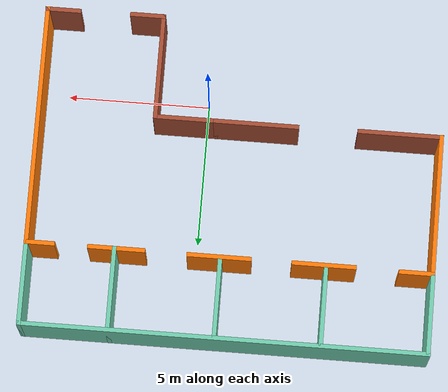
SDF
<?xml version='1.0'?>
<sdf version='1.7'>
  <model name='mybuilding'>
    <pose>-1.18 3.025 0 0 -0 0</pose>
    <link name='Wall_0'>
      <collision name='Wall_0_Collision'>
        <geometry>
          <box>
            <size>14.25 0.15 2.5</size>
          </box>
        </geometry>
        <pose>0 0 1.25 0 -0 0</pose>
      </collision>
      <visual name='Wall_0_Visual'>
        <pose>0 0 1.25 0 -0 0</pose>
        <geometry>
          <box>
            <size>14.25 0.15 2.5</size>
          </box>
        </geometry>
        <material>
          <script>
            <uri>file://media/materials/scripts/gazebo.material</uri>
            <name>Gazebo/Grey</name>
          </script>
          <ambient>0.435294 0.796078 0.67451 1</ambient>
        </material>
        <meta>
          <layer>0</layer>
        </meta>
      </visual>
      <pose>0 5.615 0 0 -0 0</pose>
    </link>
    <link name='Wall_10'>
      <collision name='Wall_10_Collision'>
        <geometry>
          <box>
            <size>2.75 0.15 2.5</size>
          </box>
        </geometry>
        <pose>0 0 1.25 0 -0 0</pose>
      </collision>
      <visual name='Wall_10_Visual'>
        <pose>0 0 1.25 0 -0 0</pose>
        <geometry>
          <box>
            <size>2.75 0.15 2.5</size>
          </box>
        </geometry>
        <material>
          <script>
            <uri>file://media/materials/scripts/gazebo.material</uri>
            <name>Gazebo/Grey</name>
          </script>
          <ambient>0.435294 0.796078 0.67451 1</ambient>
        </material>
        <meta>
          <layer>0</layer>
        </meta>
      </visual>
      <pose>-3.35 4.225 0 0 -0 -1.5708</pose>
    </link>
    <link name='Wall_12'>
      <collision name='Wall_12_Collision'>
        <geometry>
          <box>
            <size>2.75 0.15 2.5</size>
          </box>
        </geometry>
        <pose>0 0 1.25 0 -0 0</pose>
      </collision>
      <visual name='Wall_12_Visual'>
        <pose>0 0 1.25 0 -0 0</pose>
        <geometry>
          <box>
            <size>2.75 0.15 2.5</size>
          </box>
        </geometry>
        <material>
          <script>
            <uri>file://media/materials/scripts/gazebo.material</uri>
            <name>Gazebo/Grey</name>
          </script>
          <ambient>0.435294 0.796078 0.67451 1</ambient>
        </material>
        <meta>
          <layer>0</layer>
        </meta>
      </visual>
      <pose>-7.04 4.235 0 0 -0 -1.5708</pose>
    </link>
    <link name='Wall_14'>
      <collision name='Wall_14_Collision'>
        <geometry>
          <box>
            <size>3 0.15 2.5</size>
          </box>
        </geometry>
        <pose>0 0 1.25 0 -0 0</pose>
      </collision>
      <visual name='Wall_14_Visual'>
        <pose>0 0 1.25 0 -0 0</pose>
        <geometry>
          <box>
            <size>3 0.15 2.5</size>
          </box>
        </geometry>
        <material>
          <script>
            <uri>file://media/materials/scripts/gazebo.material</uri>
            <name>Gazebo/Grey</name>
          </script>
          <ambient>0.435294 0.796078 0.67451 1</ambient>
        </material>
        <meta>
          <layer>0</layer>
        </meta>
      </visual>
      <pose>7.05 4.19 0 0 -0 -1.5708</pose>
    </link>
    <link name='Wall_16'>
      <collision name='Wall_16_Collision'>
        <geometry>
          <box>
            <size>2.25 0.15 2.5</size>
          </box>
        </geometry>
        <pose>0 0 1.25 0 -0 0</pose>
      </collision>
      <visual name='Wall_16_Visual'>
        <pose>0 0 1.25 0 -0 0</pose>
        <geometry>
          <box>
            <size>2.25 0.15 2.5</size>
          </box>
        </geometry>
        <material>
          <script>
            <uri>file://media/materials/scripts/gazebo.material</uri>
            <name>Gazebo/Grey</name>
          </script>
          <ambient>0.996078 0.47451 0.0196078 1</ambient>
        </material>
        <meta>
          <layer>0</layer>
        </meta>
      </visual>
      <pose>0.36 2.785 0 0 -0 3.14159</pose>
    </link>
    <link name='Wall_18'>
      <collision name='Wall_18_Collision'>
        <geometry>
          <box>
            <size>2.25 0.15 2.5</size>
          </box>
        </geometry>
        <pose>0 0 1.25 0 -0 0</pose>
      </collision>
      <visual name='Wall_18_Visual'>
        <pose>0 0 1.25 0 -0 0</pose>
        <geometry>
          <box>
            <size>2.25 0.15 2.5</size>
          </box>
        </geometry>
        <material>
          <script>
            <uri>file://media/materials/scripts/gazebo.material</uri>
            <name>Gazebo/Grey</name>
          </script>
          <ambient>0.996078 0.47451 0.0196078 1</ambient>
        </material>
        <meta>
          <layer>0</layer>
        </meta>
      </visual>
      <pose>-3.27 2.795 0 0 -0 3.14159</pose>
    </link>
    <link name='Wall_2'>
      <collision name='Wall_2_Collision'>
        <geometry>
          <box>
            <size>1 0.15 2.5</size>
          </box>
        </geometry>
        <pose>0 0 1.25 0 -0 0</pose>
      </collision>
      <visual name='Wall_2_Visual'>
        <pose>0 0 1.25 0 -0 0</pose>
        <geometry>
          <box>
            <size>1 0.15 2.5</size>
          </box>
        </geometry>
        <material>
          <script>
            <uri>file://media/materials/scripts/gazebo.material</uri>
            <name>Gazebo/Grey</name>
          </script>
          <ambient>0.996078 0.47451 0.0196078 1</ambient>
        </material>
        <meta>
          <layer>0</layer>
        </meta>
      </visual>
      <pose>6.555 2.765 0 0 -0 3.14159</pose>
    </link>
    <link name='Wall_22'>
      <collision name='Wall_22_Collision'>
        <geometry>
          <box>
            <size>5 0.15 2.5</size>
          </box>
        </geometry>
        <pose>0 0 1.25 0 -0 0</pose>
      </collision>
      <visual name='Wall_22_Visual'>
        <pose>0 0 1.25 0 -0 0</pose>
        <geometry>
          <box>
            <size>5 0.15 2.5</size>
          </box>
        </geometry>
        <material>
          <script>
            <uri>file://media/materials/scripts/gazebo.material</uri>
            <name>Gazebo/Grey</name>
          </script>
          <ambient>0.996078 0.47451 0.0196078 1</ambient>
        </material>
        <meta>
          <layer>0</layer>
        </meta>
      </visual>
      <pose>-7.03 0.4 0 0 -0 -1.5708</pose>
    </link>
    <link name='Wall_25'>
      <collision name='Wall_25_Collision'>
        <geometry>
          <box>
            <size>1.25 0.15 2.5</size>
          </box>
        </geometry>
        <pose>0 0 1.25 0 -0 0</pose>
      </collision>
      <visual name='Wall_25_Visual'>
        <pose>0 0 1.25 0 -0 0</pose>
        <geometry>
          <box>
            <size>1.25 0.15 2.5</size>
          </box>
        </geometry>
        <material>
          <script>
            <uri>file://media/materials/scripts/gazebo.material</uri>
            <name>Gazebo/Grey</name>
          </script>
          <ambient>0.996078 0.47451 0.0196078 1</ambient>
        </material>
        <meta>
          <layer>0</layer>
        </meta>
      </visual>
      <pose>-6.48 2.825 0 0 -0 0</pose>
    </link>
    <link name='Wall_27'>
      <collision name='Wall_27_Collision'>
        <geometry>
          <box>
            <size>3 0.15 2.5</size>
          </box>
        </geometry>
        <pose>0 0 1.25 0 -0 0</pose>
      </collision>
      <visual name='Wall_27_Visual'>
        <pose>0 0 1.25 0 -0 0</pose>
        <geometry>
          <box>
            <size>3 0.15 2.5</size>
          </box>
        </geometry>
        <material>
          <script>
            <uri>file://media/materials/scripts/gazebo.material</uri>
            <name>Gazebo/Bricks</name>
          </script>
          <ambient>1 1 1 1</ambient>
        </material>
        <meta>
          <layer>0</layer>
        </meta>
      </visual>
      <pose>-5.605 -2.025 0 0 -0 0</pose>
    </link>
    <link name='Wall_29'>
      <collision name='Wall_29_Collision'>
        <geometry>
          <box>
            <size>3 0.15 2.5</size>
          </box>
        </geometry>
        <pose>0 0 1.25 0 -0 0</pose>
      </collision>
      <visual name='Wall_29_Visual'>
        <pose>0 0 1.25 0 -0 0</pose>
        <geometry>
          <box>
            <size>3 0.15 2.5</size>
          </box>
        </geometry>
        <material>
          <script>
            <uri>file://media/materials/scripts/gazebo.material</uri>
            <name>Gazebo/Bricks</name>
          </script>
          <ambient>1 1 1 1</ambient>
        </material>
        <meta>
          <layer>0</layer>
        </meta>
      </visual>
      <pose>-0.565 -2.005 0 0 -0 0</pose>
    </link>
    <link name='Wall_31'>
      <collision name='Wall_31_Collision'>
        <geometry>
          <box>
            <size>8.5 0.15 2.5</size>
          </box>
        </geometry>
        <pose>0 0 1.25 0 -0 0</pose>
      </collision>
      <visual name='Wall_31_Visual'>
        <pose>0 0 1.25 0 -0 0</pose>
        <geometry>
          <box>
            <size>8.5 0.15 2.5</size>
          </box>
        </geometry>
        <material>
          <script>
            <uri>file://media/materials/scripts/gazebo.material</uri>
            <name>Gazebo/Grey</name>
          </script>
          <ambient>0.996078 0.47451 0.0196078 1</ambient>
        </material>
        <meta>
          <layer>0</layer>
        </meta>
      </visual>
      <pose>7.05 -1.41 0 0 -0 -1.5708</pose>
    </link>
    <link name='Wall_33'>
      <collision name='Wall_33_Collision'>
        <geometry>
          <box>
            <size>1.25 0.15 2.5</size>
          </box>
        </geometry>
        <pose>0 0 1.25 0 -0 0</pose>
      </collision>
      <visual name='Wall_33_Visual'>
        <pose>0 0 1.25 0 -0 0</pose>
        <geometry>
          <box>
            <size>1.25 0.15 2.5</size>
          </box>
        </geometry>
        <material>
          <script>
            <uri>file://media/materials/scripts/gazebo.material</uri>
            <name>Gazebo/Bricks</name>
          </script>
          <ambient>1 1 1 1</ambient>
        </material>
        <meta>
          <layer>0</layer>
        </meta>
      </visual>
      <pose>6.5 -5.585 0 0 -0 3.14159</pose>
    </link>
    <link name='Wall_37'>
      <collision name='Wall_37_Collision'>
        <geometry>
          <box>
            <size>3.75 0.15 2.5</size>
          </box>
        </geometry>
        <pose>0 0 1.25 0 -0 0</pose>
      </collision>
      <visual name='Wall_37_Visual'>
        <pose>0 0 1.25 0 -0 0</pose>
        <geometry>
          <box>
            <size>3.75 0.15 2.5</size>
          </box>
        </geometry>
        <material>
          <script>
            <uri>file://media/materials/scripts/gazebo.material</uri>
            <name>Gazebo/Bricks</name>
          </script>
          <ambient>1 1 1 1</ambient>
        </material>
        <meta>
          <layer>0</layer>
        </meta>
      </visual>
      <pose>2.97 -3.815 0 0 -0 1.5708</pose>
    </link>
    <link name='Wall_39'>
      <collision name='Wall_39_Collision'>
        <geometry>
          <box>
            <size>2.25 0.15 2.5</size>
          </box>
        </geometry>
        <pose>0 0 1.25 0 -0 0</pose>
      </collision>
      <visual name='Wall_39_Visual'>
        <pose>0 0 1.25 0 -0 0</pose>
        <geometry>
          <box>
            <size>2.25 0.15 2.5</size>
          </box>
        </geometry>
        <material>
          <script>
            <uri>file://media/materials/scripts/gazebo.material</uri>
            <name>Gazebo/Bricks</name>
          </script>
          <ambient>1 1 1 1</ambient>
        </material>
        <meta>
          <layer>0</layer>
        </meta>
      </visual>
      <pose>1.91 -2.005 0 0 -0 0</pose>
    </link>
    <link name='Wall_4'>
      <collision name='Wall_4_Collision'>
        <geometry>
          <box>
            <size>2 0.15 2.5</size>
          </box>
        </geometry>
        <pose>0 0 1.25 0 -0 0</pose>
      </collision>
      <visual name='Wall_4_Visual'>
        <pose>0 0 1.25 0 -0 0</pose>
        <geometry>
          <box>
            <size>2 0.15 2.5</size>
          </box>
        </geometry>
        <material>
          <script>
            <uri>file://media/materials/scripts/gazebo.material</uri>
            <name>Gazebo/Grey</name>
          </script>
          <ambient>0.996078 0.47451 0.0196078 1</ambient>
        </material>
        <meta>
          <layer>0</layer>
        </meta>
      </visual>
      <pose>3.925 2.765 0 0 -0 3.14159</pose>
    </link>
    <link name='Wall_41'>
      <collision name='Wall_41_Collision'>
        <geometry>
          <box>
            <size>1.25 0.15 2.5</size>
          </box>
        </geometry>
        <pose>0 0 1.25 0 -0 0</pose>
      </collision>
      <visual name='Wall_41_Visual'>
        <pose>0 0 1.25 0 -0 0</pose>
        <geometry>
          <box>
            <size>1.25 0.15 2.5</size>
          </box>
        </geometry>
        <material>
          <script>
            <uri>file://media/materials/scripts/gazebo.material</uri>
            <name>Gazebo/Bricks</name>
          </script>
          <ambient>1 1 1 1</ambient>
        </material>
        <meta>
          <layer>0</layer>
        </meta>
      </visual>
      <pose>3.52 -5.615 0 0 -0 0</pose>
    </link>
    <link name='Wall_6'>
      <collision name='Wall_6_Collision'>
        <geometry>
          <box>
            <size>3 0.15 2.5</size>
          </box>
        </geometry>
        <pose>0 0 1.25 0 -0 0</pose>
      </collision>
      <visual name='Wall_6_Visual'>
        <pose>0 0 1.25 0 -0 0</pose>
        <geometry>
          <box>
            <size>3 0.15 2.5</size>
          </box>
        </geometry>
        <material>
          <script>
            <uri>file://media/materials/scripts/gazebo.material</uri>
            <name>Gazebo/Grey</name>
          </script>
          <ambient>0.435294 0.796078 0.67451 1</ambient>
        </material>
        <meta>
          <layer>0</layer>
        </meta>
      </visual>
      <pose>3.99 4.19 0 0 -0 1.5708</pose>
    </link>
    <link name='Wall_8'>
      <collision name='Wall_8_Collision'>
        <geometry>
          <box>
            <size>2.75 0.15 2.5</size>
          </box>
        </geometry>
        <pose>0 0 1.25 0 -0 0</pose>
      </collision>
      <visual name='Wall_8_Visual'>
        <pose>0 0 1.25 0 -0 0</pose>
        <geometry>
          <box>
            <size>2.75 0.15 2.5</size>
          </box>
        </geometry>
        <material>
          <script>
            <uri>file://media/materials/scripts/gazebo.material</uri>
            <name>Gazebo/Grey</name>
          </script>
          <ambient>0.435294 0.796078 0.67451 1</ambient>
        </material>
        <meta>
          <layer>0</layer>
        </meta>
      </visual>
      <pose>0.32 4.225 0 0 -0 -1.5708</pose>
    </link>
    <static>1</static>
  </model>
</sdf>
